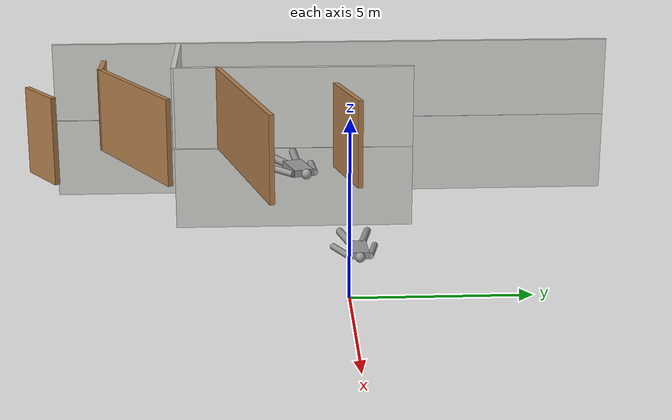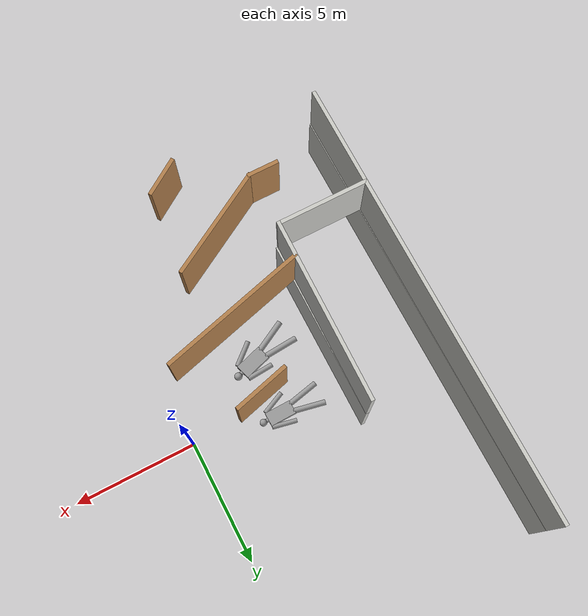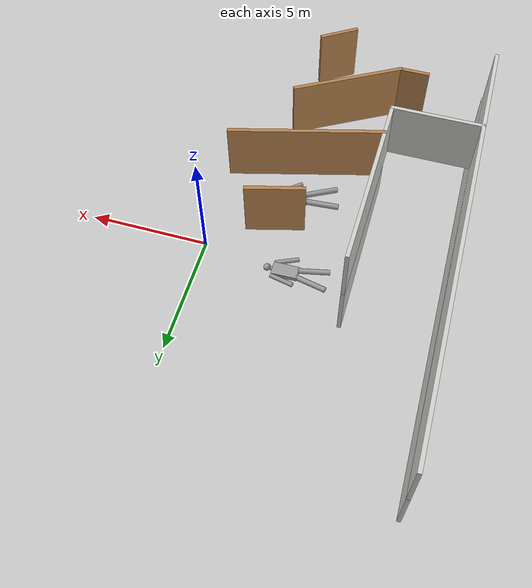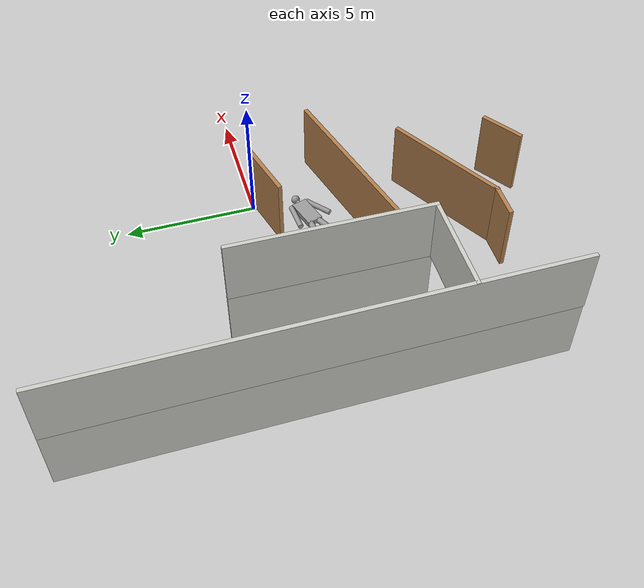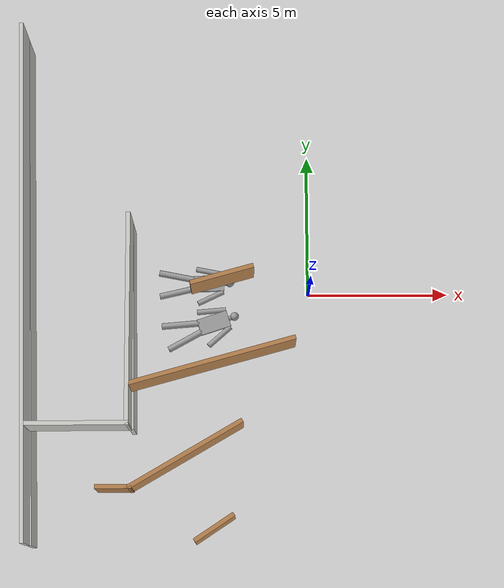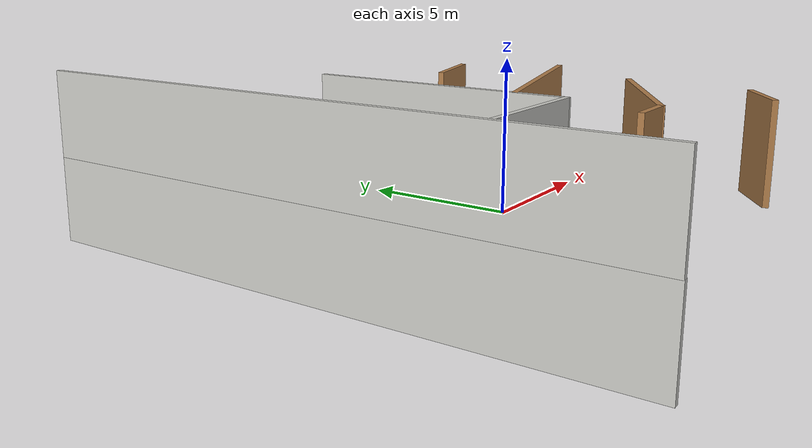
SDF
<sdf version="1.6">
 <model name="home_human">
  <link name="Wall_129">
   <pose>-8.07133 -4.92941 2.5 0 -0 3.14159</pose>
   <visual name="Wall_129_Visual">
    <pose>0 0 1.25 0 -0 0</pose>
    <geometry><box><size>3.66889 0.15 2.5</size></box></geometry>
    <material>
     <script><uri>file://media/materials/scripts/gazebo.material</uri><name>Gazebo/CeilingTiled</name></script>
     <ambient>1 1 1 1</ambient>
     <shader type="pixel"/>
    </material>
    <meta><layer>1</layer></meta>
   </visual>
   <collision name="Wall_129_Collision">
    <pose>0 0 1.25 0 -0 0</pose>
    <geometry><box><size>3.66889 0.15 2.5</size></box></geometry>
    <surface>
     <friction>
      <ode><mu>1</mu><mu2>1</mu2><fdir1>0 0 0</fdir1><slip1>0</slip1><slip2>0</slip2></ode>
      <torsional>
       <coefficient>1</coefficient>
       <patch_radius>0</patch_radius>
       <surface_radius>0</surface_radius>
       <use_patch_radius>1</use_patch_radius>
       <ode><slip>0</slip></ode>
      </torsional>
     </friction>
     <bounce><restitution_coefficient>0</restitution_coefficient><threshold>1e+06</threshold></bounce>
     <contact>
      <collide_without_contact>0</collide_without_contact>
      <collide_without_contact_bitmask>1</collide_without_contact_bitmask>
      <collide_bitmask>1</collide_bitmask>
      <ode>
       <soft_cfm>0</soft_cfm>
       <soft_erp>0.2</soft_erp>
       <kp>1e+13</kp>
       <kd>1</kd>
       <max_vel>0.01</max_vel>
       <min_depth>0</min_depth>
      </ode>
      <bullet>
       <split_impulse>1</split_impulse>
       <split_impulse_penetration_threshold>-0.01</split_impulse_penetration_threshold>
       <soft_cfm>0</soft_cfm>
       <soft_erp>0.2</soft_erp>
       <kp>1e+13</kp>
       <kd>1</kd>
      </bullet>
     </contact>
    </surface>
   </collision>
  </link>
  <link name="Wall_136">
   <pose>-3.43327 -2.83141 2.5 0 -0 0.26177</pose>
   <visual name="Wall_136_Visual">
    <pose>0 0 1.25 0 -0 0</pose>
    <geometry><box><size>6 0.15 2.5</size></box></geometry>
    <material>
     <script><uri>file://media/materials/scripts/gazebo.material</uri><name>Gazebo/Wood</name></script>
     <ambient>1 1 1 1</ambient>
     <shader type="pixel"/>
    </material>
    <meta><layer>1</layer></meta>
   </visual>
   <collision name="Wall_136_Collision">
    <pose>0 0 1.25 0 -0 0</pose>
    <geometry><box><size>6 0.15 2.5</size></box></geometry>
    <surface>
     <friction>
      <ode><mu>1</mu><mu2>1</mu2><fdir1>0 0 0</fdir1><slip1>0</slip1><slip2>0</slip2></ode>
      <torsional>
       <coefficient>1</coefficient>
       <patch_radius>0</patch_radius>
       <surface_radius>0</surface_radius>
       <use_patch_radius>1</use_patch_radius>
       <ode><slip>0</slip></ode>
      </torsional>
     </friction>
     <bounce><restitution_coefficient>0</restitution_coefficient><threshold>1e+06</threshold></bounce>
     <contact>
      <collide_without_contact>0</collide_without_contact>
      <collide_without_contact_bitmask>1</collide_without_contact_bitmask>
      <collide_bitmask>1</collide_bitmask>
      <ode>
       <soft_cfm>0</soft_cfm>
       <soft_erp>0.2</soft_erp>
       <kp>1e+13</kp>
       <kd>1</kd>
       <max_vel>0.01</max_vel>
       <min_depth>0</min_depth>
      </ode>
      <bullet>
       <split_impulse>1</split_impulse>
       <split_impulse_penetration_threshold>-0.01</split_impulse_penetration_threshold>
       <soft_cfm>0</soft_cfm>
       <soft_erp>0.2</soft_erp>
       <kp>1e+13</kp>
       <kd>1</kd>
      </bullet>
     </contact>
    </surface>
   </collision>
  </link>
  <link name="Wall_138">
   <pose>-3.04677 0.122093 2.5 0 0 -2.87998</pose>
   <visual name="Wall_138_Visual">
    <pose>0 0 1.25 0 -0 0</pose>
    <geometry><box><size>2.25 0.15 2.5</size></box></geometry>
    <material>
     <script><uri>file://media/materials/scripts/gazebo.material</uri><name>Gazebo/Wood</name></script>
     <ambient>1 1 1 1</ambient>
     <shader type="pixel"/>
    </material>
    <meta><layer>1</layer></meta>
   </visual>
   <collision name="Wall_138_Collision">
    <pose>0 0 1.25 0 -0 0</pose>
    <geometry><box><size>2.25 0.15 2.5</size></box></geometry>
    <surface>
     <friction>
      <ode><mu>1</mu><mu2>1</mu2><fdir1>0 0 0</fdir1><slip1>0</slip1><slip2>0</slip2></ode>
      <torsional>
       <coefficient>1</coefficient>
       <patch_radius>0</patch_radius>
       <surface_radius>0</surface_radius>
       <use_patch_radius>1</use_patch_radius>
       <ode><slip>0</slip></ode>
      </torsional>
     </friction>
     <bounce><restitution_coefficient>0</restitution_coefficient><threshold>1e+06</threshold></bounce>
     <contact>
      <collide_without_contact>0</collide_without_contact>
      <collide_without_contact_bitmask>1</collide_without_contact_bitmask>
      <collide_bitmask>1</collide_bitmask>
      <ode>
       <soft_cfm>0</soft_cfm>
       <soft_erp>0.2</soft_erp>
       <kp>1e+13</kp>
       <kd>1</kd>
       <max_vel>0.01</max_vel>
       <min_depth>0</min_depth>
      </ode>
      <bullet>
       <split_impulse>1</split_impulse>
       <split_impulse_penetration_threshold>-0.01</split_impulse_penetration_threshold>
       <soft_cfm>0</soft_cfm>
       <soft_erp>0.2</soft_erp>
       <kp>1e+13</kp>
       <kd>1</kd>
      </bullet>
     </contact>
    </surface>
   </collision>
  </link>
  <link name="Wall_150">
   <pose>-3.34634 -8.48341 2.5 0 -0 0.584627</pose>
   <visual name="Wall_150_Visual">
    <pose>0 0 1.25 0 -0 0</pose>
    <geometry><box><size>1.60682 0.15 2.5</size></box></geometry>
    <material>
     <script><uri>file://media/materials/scripts/gazebo.material</uri><name>Gazebo/Wood</name></script>
     <ambient>1 1 1 1</ambient>
     <shader type="pixel"/>
    </material>
    <meta><layer>1</layer></meta>
   </visual>
   <collision name="Wall_150_Collision">
    <pose>0 0 1.25 0 -0 0</pose>
    <geometry><box><size>1.60682 0.15 2.5</size></box></geometry>
    <surface>
     <friction>
      <ode><mu>1</mu><mu2>1</mu2><fdir1>0 0 0</fdir1><slip1>0</slip1><slip2>0</slip2></ode>
      <torsional>
       <coefficient>1</coefficient>
       <patch_radius>0</patch_radius>
       <surface_radius>0</surface_radius>
       <use_patch_radius>1</use_patch_radius>
       <ode><slip>0</slip></ode>
      </torsional>
     </friction>
     <bounce><restitution_coefficient>0</restitution_coefficient><threshold>1e+06</threshold></bounce>
     <contact>
      <collide_without_contact>0</collide_without_contact>
      <collide_without_contact_bitmask>1</collide_without_contact_bitmask>
      <collide_bitmask>1</collide_bitmask>
      <ode>
       <soft_cfm>0</soft_cfm>
       <soft_erp>0.2</soft_erp>
       <kp>1e+13</kp>
       <kd>1</kd>
       <max_vel>0.01</max_vel>
       <min_depth>0</min_depth>
      </ode>
      <bullet>
       <split_impulse>1</split_impulse>
       <split_impulse_penetration_threshold>-0.01</split_impulse_penetration_threshold>
       <soft_cfm>0</soft_cfm>
       <soft_erp>0.2</soft_erp>
       <kp>1e+13</kp>
       <kd>1</kd>
      </bullet>
     </contact>
    </surface>
   </collision>
  </link>
  <link name="Wall_153">
   <pose>-4.32138 -5.99691 2.5 0 0 -2.61799</pose>
   <visual name="Wall_153_Visual">
    <pose>0 0 1.25 0 -0 0</pose>
    <geometry><box><size>4.5 0.15 2.5</size></box></geometry>
    <material>
     <script><uri>file://media/materials/scripts/gazebo.material</uri><name>Gazebo/Wood</name></script>
     <ambient>1 1 1 1</ambient>
     <shader type="pixel"/>
    </material>
    <meta><layer>1</layer></meta>
   </visual>
   <collision name="Wall_153_Collision">
    <pose>0 0 1.25 0 -0 0</pose>
    <geometry><box><size>4.5 0.15 2.5</size></box></geometry>
    <surface>
     <friction>
      <ode><mu>1</mu><mu2>1</mu2><fdir1>0 0 0</fdir1><slip1>0</slip1><slip2>0</slip2></ode>
      <torsional>
       <coefficient>1</coefficient>
       <patch_radius>0</patch_radius>
       <surface_radius>0</surface_radius>
       <use_patch_radius>1</use_patch_radius>
       <ode><slip>0</slip></ode>
      </torsional>
     </friction>
     <bounce><restitution_coefficient>0</restitution_coefficient><threshold>1e+06</threshold></bounce>
     <contact>
      <collide_without_contact>0</collide_without_contact>
      <collide_without_contact_bitmask>1</collide_without_contact_bitmask>
      <collide_bitmask>1</collide_bitmask>
      <ode>
       <soft_cfm>0</soft_cfm>
       <soft_erp>0.2</soft_erp>
       <kp>1e+13</kp>
       <kd>1</kd>
       <max_vel>0.01</max_vel>
       <min_depth>0</min_depth>
      </ode>
      <bullet>
       <split_impulse>1</split_impulse>
       <split_impulse_penetration_threshold>-0.01</split_impulse_penetration_threshold>
       <soft_cfm>0</soft_cfm>
       <soft_erp>0.2</soft_erp>
       <kp>1e+13</kp>
       <kd>1</kd>
      </bullet>
     </contact>
    </surface>
   </collision>
  </link>
  <link name="Wall_155">
   <pose>-6.75498 -7.08441 2.5 0 -0 0</pose>
   <visual name="Wall_155_Visual">
    <pose>0 0 1.25 0 -0 0</pose>
    <geometry><box><size>1.25 0.15 2.5</size></box></geometry>
    <material>
     <script><uri>file://media/materials/scripts/gazebo.material</uri><name>Gazebo/Wood</name></script>
     <ambient>1 1 1 1</ambient>
     <shader type="pixel"/>
    </material>
    <meta><layer>1</layer></meta>
   </visual>
   <collision name="Wall_155_Collision">
    <pose>0 0 1.25 0 -0 0</pose>
    <geometry><box><size>1.25 0.15 2.5</size></box></geometry>
    <surface>
     <friction>
      <ode><mu>1</mu><mu2>1</mu2><fdir1>0 0 0</fdir1><slip1>0</slip1><slip2>0</slip2></ode>
      <torsional>
       <coefficient>1</coefficient>
       <patch_radius>0</patch_radius>
       <surface_radius>0</surface_radius>
       <use_patch_radius>1</use_patch_radius>
       <ode><slip>0</slip></ode>
      </torsional>
     </friction>
     <bounce><restitution_coefficient>0</restitution_coefficient><threshold>1e+06</threshold></bounce>
     <contact>
      <collide_without_contact>0</collide_without_contact>
      <collide_without_contact_bitmask>1</collide_without_contact_bitmask>
      <collide_bitmask>1</collide_bitmask>
      <ode>
       <soft_cfm>0</soft_cfm>
       <soft_erp>0.2</soft_erp>
       <kp>1e+13</kp>
       <kd>1</kd>
       <max_vel>0.01</max_vel>
       <min_depth>0</min_depth>
      </ode>
      <bullet>
       <split_impulse>1</split_impulse>
       <split_impulse_penetration_threshold>-0.01</split_impulse_penetration_threshold>
       <soft_cfm>0</soft_cfm>
       <soft_erp>0.2</soft_erp>
       <kp>1e+13</kp>
       <kd>1</kd>
      </bullet>
     </contact>
    </surface>
   </collision>
  </link>
  <link name="Wall_20">
   <pose>-9.85327 -0.021907 0 0 0 -1.56307</pose>
   <visual name="Wall_20_Visual">
    <pose>0 0 1.25 0 -0 0</pose>
    <geometry><box><size>17.8918 0.15 2.5</size></box></geometry>
    <material>
     <script><uri>file://media/materials/scripts/gazebo.material</uri><name>Gazebo/CeilingTiled</name></script>
     <ambient>1 1 1 1</ambient>
     <shader type="pixel"/>
    </material>
    <meta><layer>0</layer></meta>
   </visual>
   <collision name="Wall_20_Collision">
    <pose>0 0 1.25 0 -0 0</pose>
    <geometry><box><size>17.8918 0.15 2.5</size></box></geometry>
    <surface>
     <friction>
      <ode><mu>1</mu><mu2>1</mu2><fdir1>0 0 0</fdir1><slip1>0</slip1><slip2>0</slip2></ode>
      <torsional>
       <coefficient>1</coefficient>
       <patch_radius>0</patch_radius>
       <surface_radius>0</surface_radius>
       <use_patch_radius>1</use_patch_radius>
       <ode><slip>0</slip></ode>
      </torsional>
     </friction>
     <bounce><restitution_coefficient>0</restitution_coefficient><threshold>1e+06</threshold></bounce>
     <contact>
      <collide_without_contact>0</collide_without_contact>
      <collide_without_contact_bitmask>1</collide_without_contact_bitmask>
      <collide_bitmask>1</collide_bitmask>
      <ode>
       <soft_cfm>0</soft_cfm>
       <soft_erp>0.2</soft_erp>
       <kp>1e+13</kp>
       <kd>1</kd>
       <max_vel>0.01</max_vel>
       <min_depth>0</min_depth>
      </ode>
      <bullet>
       <split_impulse>1</split_impulse>
       <split_impulse_penetration_threshold>-0.01</split_impulse_penetration_threshold>
       <soft_cfm>0</soft_cfm>
       <soft_erp>0.2</soft_erp>
       <kp>1e+13</kp>
       <kd>1</kd>
      </bullet>
     </contact>
    </surface>
   </collision>
  </link>
  <link name="Wall_31">
   <pose>-6.23077 -1.33341 0 0 0 -1.5708</pose>
   <visual name="Wall_31_Visual">
    <pose>0 0 1.25 0 -0 0</pose>
    <geometry><box><size>7.25 0.15 2.5</size></box></geometry>
    <material>
     <script><uri>file://media/materials/scripts/gazebo.material</uri><name>Gazebo/CeilingTiled</name></script>
     <ambient>1 1 1 1</ambient>
     <shader type="pixel"/>
    </material>
    <meta><layer>0</layer></meta>
   </visual>
   <collision name="Wall_31_Collision">
    <pose>0 0 1.25 0 -0 0</pose>
    <geometry><box><size>7.25 0.15 2.5</size></box></geometry>
    <surface>
     <friction>
      <ode><mu>1</mu><mu2>1</mu2><fdir1>0 0 0</fdir1><slip1>0</slip1><slip2>0</slip2></ode>
      <torsional>
       <coefficient>1</coefficient>
       <patch_radius>0</patch_radius>
       <surface_radius>0</surface_radius>
       <use_patch_radius>1</use_patch_radius>
       <ode><slip>0</slip></ode>
      </torsional>
     </friction>
     <bounce><restitution_coefficient>0</restitution_coefficient><threshold>1e+06</threshold></bounce>
     <contact>
      <collide_without_contact>0</collide_without_contact>
      <collide_without_contact_bitmask>1</collide_without_contact_bitmask>
      <collide_bitmask>1</collide_bitmask>
      <ode>
       <soft_cfm>0</soft_cfm>
       <soft_erp>0.2</soft_erp>
       <kp>1e+13</kp>
       <kd>1</kd>
       <max_vel>0.01</max_vel>
       <min_depth>0</min_depth>
      </ode>
      <bullet>
       <split_impulse>1</split_impulse>
       <split_impulse_penetration_threshold>-0.01</split_impulse_penetration_threshold>
       <soft_cfm>0</soft_cfm>
       <soft_erp>0.2</soft_erp>
       <kp>1e+13</kp>
       <kd>1</kd>
      </bullet>
     </contact>
    </surface>
   </collision>
  </link>
  <link name="Wall_62">
   <pose>-9.87377 -0.021907 2.5 0 0 -1.56539</pose>
   <visual name="Wall_62_Visual">
    <pose>0 0 1.25 0 -0 0</pose>
    <geometry><box><size>17.8918 0.15 2.5</size></box></geometry>
    <material>
     <script><uri>file://media/materials/scripts/gazebo.material</uri><name>Gazebo/CeilingTiled</name></script>
     <ambient>1 1 1 1</ambient>
     <shader type="pixel"/>
    </material>
    <meta><layer>1</layer></meta>
   </visual>
   <collision name="Wall_62_Collision">
    <pose>0 0 1.25 0 -0 0</pose>
    <geometry><box><size>17.8918 0.15 2.5</size></box></geometry>
    <surface>
     <friction>
      <ode><mu>1</mu><mu2>1</mu2><fdir1>0 0 0</fdir1><slip1>0</slip1><slip2>0</slip2></ode>
      <torsional>
       <coefficient>1</coefficient>
       <patch_radius>0</patch_radius>
       <surface_radius>0</surface_radius>
       <use_patch_radius>1</use_patch_radius>
       <ode><slip>0</slip></ode>
      </torsional>
     </friction>
     <bounce><restitution_coefficient>0</restitution_coefficient><threshold>1e+06</threshold></bounce>
     <contact>
      <collide_without_contact>0</collide_without_contact>
      <collide_without_contact_bitmask>1</collide_without_contact_bitmask>
      <collide_bitmask>1</collide_bitmask>
      <ode>
       <soft_cfm>0</soft_cfm>
       <soft_erp>0.2</soft_erp>
       <kp>1e+13</kp>
       <kd>1</kd>
       <max_vel>0.01</max_vel>
       <min_depth>0</min_depth>
      </ode>
      <bullet>
       <split_impulse>1</split_impulse>
       <split_impulse_penetration_threshold>-0.01</split_impulse_penetration_threshold>
       <soft_cfm>0</soft_cfm>
       <soft_erp>0.2</soft_erp>
       <kp>1e+13</kp>
       <kd>1</kd>
      </bullet>
     </contact>
    </surface>
   </collision>
  </link>
  <link name="Wall_68">
   <pose>-6.27133 -1.35641 2.5 0 0 -1.58215</pose>
   <visual name="Wall_68_Visual">
    <pose>0 0 1.25 0 -0 0</pose>
    <geometry><box><size>7.29646 0.15 2.5</size></box></geometry>
    <material>
     <script><uri>file://media/materials/scripts/gazebo.material</uri><name>Gazebo/CeilingTiled</name></script>
     <ambient>1 1 1 1</ambient>
     <shader type="pixel"/>
    </material>
    <meta><layer>1</layer></meta>
   </visual>
   <collision name="Wall_68_Collision">
    <pose>0 0 1.25 0 -0 0</pose>
    <geometry><box><size>7.29646 0.15 2.5</size></box></geometry>
    <surface>
     <friction>
      <ode><mu>1</mu><mu2>1</mu2><fdir1>0 0 0</fdir1><slip1>0</slip1><slip2>0</slip2></ode>
      <torsional>
       <coefficient>1</coefficient>
       <patch_radius>0</patch_radius>
       <surface_radius>0</surface_radius>
       <use_patch_radius>1</use_patch_radius>
       <ode><slip>0</slip></ode>
      </torsional>
     </friction>
     <bounce><restitution_coefficient>0</restitution_coefficient><threshold>1e+06</threshold></bounce>
     <contact>
      <collide_without_contact>0</collide_without_contact>
      <collide_without_contact_bitmask>1</collide_without_contact_bitmask>
      <collide_bitmask>1</collide_bitmask>
      <ode>
       <soft_cfm>0</soft_cfm>
       <soft_erp>0.2</soft_erp>
       <kp>1e+13</kp>
       <kd>1</kd>
       <max_vel>0.01</max_vel>
       <min_depth>0</min_depth>
      </ode>
      <bullet>
       <split_impulse>1</split_impulse>
       <split_impulse_penetration_threshold>-0.01</split_impulse_penetration_threshold>
       <soft_cfm>0</soft_cfm>
       <soft_erp>0.2</soft_erp>
       <kp>1e+13</kp>
       <kd>1</kd>
      </bullet>
     </contact>
    </surface>
   </collision>
  </link>
  <model name="human_0">
   <link name="link_2">
    <inertial>
     <mass>0.00274256</mass>
     <inertia>
      <ixx>6.98489e-06</ixx>
      <ixy>0</ixy>
      <ixz>0</ixz>
      <iyy>6.98489e-06</iyy>
      <iyz>0</iyz>
      <izz>9.48338e-06</izz>
     </inertia>
    </inertial>
    <pose>0.004143 -0.698236 0.01353 1.53639 -0.014642 -0.02388</pose>
    <visual name="visual">
     <geometry><cylinder><radius>0.0831608</radius><length>0.0990711</length></cylinder></geometry>
     <material>
      <lighting>1</lighting>
      <script><uri>file://media/materials/scripts/gazebo.material</uri><name>Gazebo/Grey</name></script>
      <shader type="pixel"/>
     </material>
    </visual>
    <collision name="collision">
     <geometry><cylinder><radius>0.083161</radius><length>0.099071</length></cylinder></geometry>
     <surface>
      <friction>
       <ode><mu>1</mu><mu2>1</mu2><fdir1>0 0 0</fdir1><slip1>0</slip1><slip2>0</slip2></ode>
       <torsional>
        <coefficient>1</coefficient>
        <patch_radius>0</patch_radius>
        <surface_radius>0</surface_radius>
        <use_patch_radius>1</use_patch_radius>
        <ode><slip>0</slip></ode>
       </torsional>
      </friction>
      <bounce><restitution_coefficient>0</restitution_coefficient><threshold>1e+06</threshold></bounce>
      <contact>
       <collide_without_contact>0</collide_without_contact>
       <collide_without_contact_bitmask>1</collide_without_contact_bitmask>
       <collide_bitmask>1</collide_bitmask>
       <ode>
        <soft_cfm>0</soft_cfm>
        <soft_erp>0.2</soft_erp>
        <kp>1e+13</kp>
        <kd>1</kd>
        <max_vel>0.01</max_vel>
        <min_depth>0</min_depth>
       </ode>
       <bullet>
        <split_impulse>1</split_impulse>
        <split_impulse_penetration_threshold>-0.01</split_impulse_penetration_threshold>
        <soft_cfm>0</soft_cfm>
        <soft_erp>0.2</soft_erp>
        <kp>1e+13</kp>
        <kd>1</kd>
       </bullet>
      </contact>
     </surface>
    </collision>
   </link>
   <link name="link_3">
    <inertial>
     <mass>0.0260719</mass>
     <inertia>
      <ixx>0.000229246</ixx>
      <ixy>0</ixy>
      <ixz>0</ixz>
      <iyy>0.000229246</iyy>
      <iyz>0</iyz>
      <izz>0.000229246</izz>
     </inertia>
    </inertial>
    <pose>0.008435 -0.870567 0.038148 0 -0 0</pose>
    <visual name="visual">
     <geometry><sphere><radius>0.148263</radius></sphere></geometry>
     <material>
      <lighting>1</lighting>
      <script><uri>file://media/materials/scripts/gazebo.material</uri><name>Gazebo/Grey</name></script>
      <shader type="pixel"/>
     </material>
    </visual>
    <collision name="collision">
     <geometry><sphere><radius>0.148263</radius></sphere></geometry>
     <surface>
      <friction>
       <ode><mu>1</mu><mu2>1</mu2><fdir1>0 0 0</fdir1><slip1>0</slip1><slip2>0</slip2></ode>
       <torsional>
        <coefficient>1</coefficient>
        <patch_radius>0</patch_radius>
        <surface_radius>0</surface_radius>
        <use_patch_radius>1</use_patch_radius>
        <ode><slip>0</slip></ode>
       </torsional>
      </friction>
      <bounce><restitution_coefficient>0</restitution_coefficient><threshold>1e+06</threshold></bounce>
      <contact>
       <collide_without_contact>0</collide_without_contact>
       <collide_without_contact_bitmask>1</collide_without_contact_bitmask>
       <collide_bitmask>1</collide_bitmask>
       <ode>
        <soft_cfm>0</soft_cfm>
        <soft_erp>0.2</soft_erp>
        <kp>1e+13</kp>
        <kd>1</kd>
        <max_vel>0.01</max_vel>
        <min_depth>0</min_depth>
       </ode>
       <bullet>
        <split_impulse>1</split_impulse>
        <split_impulse_penetration_threshold>-0.01</split_impulse_penetration_threshold>
        <soft_cfm>0</soft_cfm>
        <soft_erp>0.2</soft_erp>
        <kp>1e+13</kp>
        <kd>1</kd>
       </bullet>
      </contact>
     </surface>
    </collision>
   </link>
   <link name="link_4">
    <inertial>
     <mass>0.0350676</mass>
     <inertia>
      <ixx>0.00299916</ixx>
      <ixy>0</ixy>
      <ixz>0</ixz>
      <iyy>0.00299916</iyy>
      <iyz>0</iyz>
      <izz>0.00015373</izz>
     </inertia>
    </inertial>
    <pose>0.43753 -0.16616 -0.011266 1.55407 0.003979 -0.226833</pose>
    <visual name="visual">
     <geometry><cylinder><radius>0.0936358</radius><length>1</length></cylinder></geometry>
     <material>
      <lighting>1</lighting>
      <script><uri>file://media/materials/scripts/gazebo.material</uri><name>Gazebo/Grey</name></script>
      <shader type="pixel"/>
     </material>
    </visual>
    <collision name="collision">
     <geometry><cylinder><radius>0.093636</radius><length>1</length></cylinder></geometry>
     <surface>
      <friction>
       <ode><mu>1</mu><mu2>1</mu2><fdir1>0 0 0</fdir1><slip1>0</slip1><slip2>0</slip2></ode>
       <torsional>
        <coefficient>1</coefficient>
        <patch_radius>0</patch_radius>
        <surface_radius>0</surface_radius>
        <use_patch_radius>1</use_patch_radius>
        <ode><slip>0</slip></ode>
       </torsional>
      </friction>
      <bounce><restitution_coefficient>0</restitution_coefficient><threshold>1e+06</threshold></bounce>
      <contact>
       <collide_without_contact>0</collide_without_contact>
       <collide_without_contact_bitmask>1</collide_without_contact_bitmask>
       <collide_bitmask>1</collide_bitmask>
       <ode>
        <soft_cfm>0</soft_cfm>
        <soft_erp>0.2</soft_erp>
        <kp>1e+13</kp>
        <kd>1</kd>
        <max_vel>0.01</max_vel>
        <min_depth>0</min_depth>
       </ode>
       <bullet>
        <split_impulse>1</split_impulse>
        <split_impulse_penetration_threshold>-0.01</split_impulse_penetration_threshold>
        <soft_cfm>0</soft_cfm>
        <soft_erp>0.2</soft_erp>
        <kp>1e+13</kp>
        <kd>1</kd>
       </bullet>
      </contact>
     </surface>
    </collision>
   </link>
   <link name="link_4_clone">
    <inertial>
     <mass>0.0350676</mass>
     <inertia>
      <ixx>0.00299916</ixx>
      <ixy>0</ixy>
      <ixz>0</ixz>
      <iyy>0.00299916</iyy>
      <iyz>0</iyz>
      <izz>0.00015373</izz>
     </inertia>
    </inertial>
    <pose>-0.497497 -0.16131 -0.011266 1.55968 0.013118 0.407511</pose>
    <visual name="visual">
     <geometry><cylinder><radius>0.0936358</radius><length>1</length></cylinder></geometry>
     <material>
      <lighting>1</lighting>
      <script><uri>file://media/materials/scripts/gazebo.material</uri><name>Gazebo/Grey</name></script>
      <shader type="pixel"/>
     </material>
    </visual>
    <collision name="collision">
     <geometry><cylinder><radius>0.093636</radius><length>1</length></cylinder></geometry>
     <surface>
      <friction>
       <ode><mu>1</mu><mu2>1</mu2><fdir1>0 0 0</fdir1><slip1>0</slip1><slip2>0</slip2></ode>
       <torsional>
        <coefficient>1</coefficient>
        <patch_radius>0</patch_radius>
        <surface_radius>0</surface_radius>
        <use_patch_radius>1</use_patch_radius>
        <ode><slip>0</slip></ode>
       </torsional>
      </friction>
      <bounce><restitution_coefficient>0</restitution_coefficient><threshold>1e+06</threshold></bounce>
      <contact>
       <collide_without_contact>0</collide_without_contact>
       <collide_without_contact_bitmask>1</collide_without_contact_bitmask>
       <collide_bitmask>1</collide_bitmask>
       <ode>
        <soft_cfm>0</soft_cfm>
        <soft_erp>0.2</soft_erp>
        <kp>1e+13</kp>
        <kd>1</kd>
        <max_vel>0.01</max_vel>
        <min_depth>0</min_depth>
       </ode>
       <bullet>
        <split_impulse>1</split_impulse>
        <split_impulse_penetration_threshold>-0.01</split_impulse_penetration_threshold>
        <soft_cfm>0</soft_cfm>
        <soft_erp>0.2</soft_erp>
        <kp>1e+13</kp>
        <kd>1</kd>
       </bullet>
      </contact>
     </surface>
    </collision>
   </link>
   <link name="link_4_clone_0">
    <inertial>
     <mass>0.0637493</mass>
     <inertia>
      <ixx>0.00926023</ixx>
      <ixy>0</ixy>
      <ixz>0</ixz>
      <iyy>0.00926023</iyy>
      <iyz>0</iyz>
      <izz>0.000389063</izz>
     </inertia>
    </inertial>
    <pose>0.310843 1.01076 -0.011266 1.55948 0.003979 -0.226833</pose>
    <visual name="visual">
     <geometry><cylinder><radius>0.110481</radius><length>1.30633</length></cylinder></geometry>
     <material>
      <lighting>1</lighting>
      <script><uri>file://media/materials/scripts/gazebo.material</uri><name>Gazebo/Grey</name></script>
      <shader type="pixel"/>
     </material>
    </visual>
    <collision name="collision">
     <geometry><cylinder><radius>0.110481</radius><length>1.30633</length></cylinder></geometry>
     <surface>
      <friction>
       <ode><mu>1</mu><mu2>1</mu2><fdir1>0 0 0</fdir1><slip1>0</slip1><slip2>0</slip2></ode>
       <torsional>
        <coefficient>1</coefficient>
        <patch_radius>0</patch_radius>
        <surface_radius>0</surface_radius>
        <use_patch_radius>1</use_patch_radius>
        <ode><slip>0</slip></ode>
       </torsional>
      </friction>
      <bounce><restitution_coefficient>0</restitution_coefficient><threshold>1e+06</threshold></bounce>
      <contact>
       <collide_without_contact>0</collide_without_contact>
       <collide_without_contact_bitmask>1</collide_without_contact_bitmask>
       <collide_bitmask>1</collide_bitmask>
       <ode>
        <soft_cfm>0</soft_cfm>
        <soft_erp>0.2</soft_erp>
        <kp>1e+13</kp>
        <kd>1</kd>
        <max_vel>0.01</max_vel>
        <min_depth>0</min_depth>
       </ode>
       <bullet>
        <split_impulse>1</split_impulse>
        <split_impulse_penetration_threshold>-0.01</split_impulse_penetration_threshold>
        <soft_cfm>0</soft_cfm>
        <soft_erp>0.2</soft_erp>
        <kp>1e+13</kp>
        <kd>1</kd>
       </bullet>
      </contact>
     </surface>
    </collision>
   </link>
   <link name="link_4_clone_0_clone">
    <inertial>
     <mass>0.0637493</mass>
     <inertia>
      <ixx>0.00926023</ixx>
      <ixy>0</ixy>
      <ixz>0</ixz>
      <iyy>0.00926023</iyy>
      <iyz>0</iyz>
      <izz>0.000389063</izz>
     </inertia>
    </inertial>
    <pose>-0.268402 1.01817 -0.011266 1.56033 0.010391 0.188569</pose>
    <visual name="visual">
     <geometry><cylinder><radius>0.110481</radius><length>1.30633</length></cylinder></geometry>
     <material>
      <lighting>1</lighting>
      <script><uri>file://media/materials/scripts/gazebo.material</uri><name>Gazebo/Grey</name></script>
      <shader type="pixel"/>
     </material>
    </visual>
    <collision name="collision">
     <geometry><cylinder><radius>0.110481</radius><length>1.30633</length></cylinder></geometry>
     <surface>
      <friction>
       <ode><mu>1</mu><mu2>1</mu2><fdir1>0 0 0</fdir1><slip1>0</slip1><slip2>0</slip2></ode>
       <torsional>
        <coefficient>1</coefficient>
        <patch_radius>0</patch_radius>
        <surface_radius>0</surface_radius>
        <use_patch_radius>1</use_patch_radius>
        <ode><slip>0</slip></ode>
       </torsional>
      </friction>
      <bounce><restitution_coefficient>0</restitution_coefficient><threshold>1e+06</threshold></bounce>
      <contact>
       <collide_without_contact>0</collide_without_contact>
       <collide_without_contact_bitmask>1</collide_without_contact_bitmask>
       <collide_bitmask>1</collide_bitmask>
       <ode>
        <soft_cfm>0</soft_cfm>
        <soft_erp>0.2</soft_erp>
        <kp>1e+13</kp>
        <kd>1</kd>
        <max_vel>0.01</max_vel>
        <min_depth>0</min_depth>
       </ode>
       <bullet>
        <split_impulse>1</split_impulse>
        <split_impulse_penetration_threshold>-0.01</split_impulse_penetration_threshold>
        <soft_cfm>0</soft_cfm>
        <soft_erp>0.2</soft_erp>
        <kp>1e+13</kp>
        <kd>1</kd>
       </bullet>
      </contact>
     </surface>
    </collision>
   </link>
   <link name="link_6">
    <inertial>
     <mass>0.119494</mass>
     <inertia>
      <ixx>0.0119192</ixx>
      <ixy>0</ixy>
      <ixz>0</ixz>
      <iyy>0.00354679</iyy>
      <iyz>0</iyz>
      <izz>0.0146928</izz>
     </inertia>
    </inertial>
    <pose>0.010942 -0.116021 0.002669 0 -0 0</pose>
    <visual name="visual">
     <geometry><box><size>0.563349 1.07617 0.197027</size></box></geometry>
     <material>
      <lighting>1</lighting>
      <script><uri>file://media/materials/scripts/gazebo.material</uri><name>Gazebo/Grey</name></script>
      <shader type="pixel"><normal_map>__default__</normal_map></shader>
     </material>
    </visual>
    <collision name="collision">
     <geometry><box><size>0.563349 1.07617 0.197027</size></box></geometry>
     <surface>
      <friction>
       <ode><mu>1</mu><mu2>1</mu2><fdir1>0 0 0</fdir1><slip1>0</slip1><slip2>0</slip2></ode>
       <torsional>
        <coefficient>1</coefficient>
        <patch_radius>0</patch_radius>
        <surface_radius>0</surface_radius>
        <use_patch_radius>1</use_patch_radius>
        <ode><slip>0</slip></ode>
       </torsional>
      </friction>
      <bounce><restitution_coefficient>0</restitution_coefficient><threshold>1e+06</threshold></bounce>
      <contact>
       <collide_without_contact>0</collide_without_contact>
       <collide_without_contact_bitmask>1</collide_without_contact_bitmask>
       <collide_bitmask>1</collide_bitmask>
       <ode>
        <soft_cfm>0</soft_cfm>
        <soft_erp>0.2</soft_erp>
        <kp>1e+13</kp>
        <kd>1</kd>
        <max_vel>0.01</max_vel>
        <min_depth>0</min_depth>
       </ode>
       <bullet>
        <split_impulse>1</split_impulse>
        <split_impulse_penetration_threshold>-0.01</split_impulse_penetration_threshold>
        <soft_cfm>0</soft_cfm>
        <soft_erp>0.2</soft_erp>
        <kp>1e+13</kp>
        <kd>1</kd>
       </bullet>
      </contact>
     </surface>
    </collision>
   </link>
   <static>0</static>
   <pose>-3.66522 0.444397 0.109946 0 -0 1.59893</pose>
  </model>
  <model name="human_1">
   <link name="link_2">
    <inertial>
     <mass>0.00274256</mass>
     <inertia>
      <ixx>6.98489e-06</ixx>
      <ixy>0</ixy>
      <ixz>0</ixz>
      <iyy>6.98489e-06</iyy>
      <iyz>0</iyz>
      <izz>9.48338e-06</izz>
     </inertia>
    </inertial>
    <pose>0.004143 -0.698236 0.01353 1.53639 -0.014642 -0.02388</pose>
    <visual name="visual">
     <geometry><cylinder><radius>0.0831608</radius><length>0.0990711</length></cylinder></geometry>
     <material>
      <lighting>1</lighting>
      <script><uri>file://media/materials/scripts/gazebo.material</uri><name>Gazebo/Grey</name></script>
      <shader type="pixel"/>
     </material>
    </visual>
    <collision name="collision">
     <geometry><cylinder><radius>0.083161</radius><length>0.099071</length></cylinder></geometry>
     <surface>
      <friction>
       <ode><mu>1</mu><mu2>1</mu2><fdir1>0 0 0</fdir1><slip1>0</slip1><slip2>0</slip2></ode>
       <torsional>
        <coefficient>1</coefficient>
        <patch_radius>0</patch_radius>
        <surface_radius>0</surface_radius>
        <use_patch_radius>1</use_patch_radius>
        <ode><slip>0</slip></ode>
       </torsional>
      </friction>
      <bounce><restitution_coefficient>0</restitution_coefficient><threshold>1e+06</threshold></bounce>
      <contact>
       <collide_without_contact>0</collide_without_contact>
       <collide_without_contact_bitmask>1</collide_without_contact_bitmask>
       <collide_bitmask>1</collide_bitmask>
       <ode>
        <soft_cfm>0</soft_cfm>
        <soft_erp>0.2</soft_erp>
        <kp>1e+13</kp>
        <kd>1</kd>
        <max_vel>0.01</max_vel>
        <min_depth>0</min_depth>
       </ode>
       <bullet>
        <split_impulse>1</split_impulse>
        <split_impulse_penetration_threshold>-0.01</split_impulse_penetration_threshold>
        <soft_cfm>0</soft_cfm>
        <soft_erp>0.2</soft_erp>
        <kp>1e+13</kp>
        <kd>1</kd>
       </bullet>
      </contact>
     </surface>
    </collision>
   </link>
   <link name="link_3">
    <inertial>
     <mass>0.0260719</mass>
     <inertia>
      <ixx>0.000229246</ixx>
      <ixy>0</ixy>
      <ixz>0</ixz>
      <iyy>0.000229246</iyy>
      <iyz>0</iyz>
      <izz>0.000229246</izz>
     </inertia>
    </inertial>
    <pose>0.008435 -0.870567 0.038148 0 -0 0</pose>
    <visual name="visual">
     <geometry><sphere><radius>0.148263</radius></sphere></geometry>
     <material>
      <lighting>1</lighting>
      <script><uri>file://media/materials/scripts/gazebo.material</uri><name>Gazebo/Grey</name></script>
      <shader type="pixel"/>
     </material>
    </visual>
    <collision name="collision">
     <geometry><sphere><radius>0.148263</radius></sphere></geometry>
     <surface>
      <friction>
       <ode><mu>1</mu><mu2>1</mu2><fdir1>0 0 0</fdir1><slip1>0</slip1><slip2>0</slip2></ode>
       <torsional>
        <coefficient>1</coefficient>
        <patch_radius>0</patch_radius>
        <surface_radius>0</surface_radius>
        <use_patch_radius>1</use_patch_radius>
        <ode><slip>0</slip></ode>
       </torsional>
      </friction>
      <bounce><restitution_coefficient>0</restitution_coefficient><threshold>1e+06</threshold></bounce>
      <contact>
       <collide_without_contact>0</collide_without_contact>
       <collide_without_contact_bitmask>1</collide_without_contact_bitmask>
       <collide_bitmask>1</collide_bitmask>
       <ode>
        <soft_cfm>0</soft_cfm>
        <soft_erp>0.2</soft_erp>
        <kp>1e+13</kp>
        <kd>1</kd>
        <max_vel>0.01</max_vel>
        <min_depth>0</min_depth>
       </ode>
       <bullet>
        <split_impulse>1</split_impulse>
        <split_impulse_penetration_threshold>-0.01</split_impulse_penetration_threshold>
        <soft_cfm>0</soft_cfm>
        <soft_erp>0.2</soft_erp>
        <kp>1e+13</kp>
        <kd>1</kd>
       </bullet>
      </contact>
     </surface>
    </collision>
   </link>
   <link name="link_4">
    <inertial>
     <mass>0.0350676</mass>
     <inertia>
      <ixx>0.00299916</ixx>
      <ixy>0</ixy>
      <ixz>0</ixz>
      <iyy>0.00299916</iyy>
      <iyz>0</iyz>
      <izz>0.00015373</izz>
     </inertia>
    </inertial>
    <pose>0.43753 -0.16616 -0.011266 1.55407 0.003979 -0.226833</pose>
    <visual name="visual">
     <geometry><cylinder><radius>0.0936358</radius><length>1</length></cylinder></geometry>
     <material>
      <lighting>1</lighting>
      <script><uri>file://media/materials/scripts/gazebo.material</uri><name>Gazebo/Grey</name></script>
      <shader type="pixel"/>
     </material>
    </visual>
    <collision name="collision">
     <geometry><cylinder><radius>0.093636</radius><length>1</length></cylinder></geometry>
     <surface>
      <friction>
       <ode><mu>1</mu><mu2>1</mu2><fdir1>0 0 0</fdir1><slip1>0</slip1><slip2>0</slip2></ode>
       <torsional>
        <coefficient>1</coefficient>
        <patch_radius>0</patch_radius>
        <surface_radius>0</surface_radius>
        <use_patch_radius>1</use_patch_radius>
        <ode><slip>0</slip></ode>
       </torsional>
      </friction>
      <bounce><restitution_coefficient>0</restitution_coefficient><threshold>1e+06</threshold></bounce>
      <contact>
       <collide_without_contact>0</collide_without_contact>
       <collide_without_contact_bitmask>1</collide_without_contact_bitmask>
       <collide_bitmask>1</collide_bitmask>
       <ode>
        <soft_cfm>0</soft_cfm>
        <soft_erp>0.2</soft_erp>
        <kp>1e+13</kp>
        <kd>1</kd>
        <max_vel>0.01</max_vel>
        <min_depth>0</min_depth>
       </ode>
       <bullet>
        <split_impulse>1</split_impulse>
        <split_impulse_penetration_threshold>-0.01</split_impulse_penetration_threshold>
        <soft_cfm>0</soft_cfm>
        <soft_erp>0.2</soft_erp>
        <kp>1e+13</kp>
        <kd>1</kd>
       </bullet>
      </contact>
     </surface>
    </collision>
   </link>
   <link name="link_4_clone">
    <inertial>
     <mass>0.0350676</mass>
     <inertia>
      <ixx>0.00299916</ixx>
      <ixy>0</ixy>
      <ixz>0</ixz>
      <iyy>0.00299916</iyy>
      <iyz>0</iyz>
      <izz>0.00015373</izz>
     </inertia>
    </inertial>
    <pose>-0.497497 -0.16131 -0.011266 1.55968 0.013118 0.407511</pose>
    <visual name="visual">
     <geometry><cylinder><radius>0.0936358</radius><length>1</length></cylinder></geometry>
     <material>
      <lighting>1</lighting>
      <script><uri>file://media/materials/scripts/gazebo.material</uri><name>Gazebo/Grey</name></script>
      <shader type="pixel"/>
     </material>
    </visual>
    <collision name="collision">
     <geometry><cylinder><radius>0.093636</radius><length>1</length></cylinder></geometry>
     <surface>
      <friction>
       <ode><mu>1</mu><mu2>1</mu2><fdir1>0 0 0</fdir1><slip1>0</slip1><slip2>0</slip2></ode>
       <torsional>
        <coefficient>1</coefficient>
        <patch_radius>0</patch_radius>
        <surface_radius>0</surface_radius>
        <use_patch_radius>1</use_patch_radius>
        <ode><slip>0</slip></ode>
       </torsional>
      </friction>
      <bounce><restitution_coefficient>0</restitution_coefficient><threshold>1e+06</threshold></bounce>
      <contact>
       <collide_without_contact>0</collide_without_contact>
       <collide_without_contact_bitmask>1</collide_without_contact_bitmask>
       <collide_bitmask>1</collide_bitmask>
       <ode>
        <soft_cfm>0</soft_cfm>
        <soft_erp>0.2</soft_erp>
        <kp>1e+13</kp>
        <kd>1</kd>
        <max_vel>0.01</max_vel>
        <min_depth>0</min_depth>
       </ode>
       <bullet>
        <split_impulse>1</split_impulse>
        <split_impulse_penetration_threshold>-0.01</split_impulse_penetration_threshold>
        <soft_cfm>0</soft_cfm>
        <soft_erp>0.2</soft_erp>
        <kp>1e+13</kp>
        <kd>1</kd>
       </bullet>
      </contact>
     </surface>
    </collision>
   </link>
   <link name="link_4_clone_0">
    <inertial>
     <mass>0.0637493</mass>
     <inertia>
      <ixx>0.00926023</ixx>
      <ixy>0</ixy>
      <ixz>0</ixz>
      <iyy>0.00926023</iyy>
      <iyz>0</iyz>
      <izz>0.000389063</izz>
     </inertia>
    </inertial>
    <pose>0.310843 1.01076 -0.011266 1.55948 0.003979 -0.226833</pose>
    <visual name="visual">
     <geometry><cylinder><radius>0.110481</radius><length>1.30633</length></cylinder></geometry>
     <material>
      <lighting>1</lighting>
      <script><uri>file://media/materials/scripts/gazebo.material</uri><name>Gazebo/Grey</name></script>
      <shader type="pixel"/>
     </material>
    </visual>
    <collision name="collision">
     <geometry><cylinder><radius>0.110481</radius><length>1.30633</length></cylinder></geometry>
     <surface>
      <friction>
       <ode><mu>1</mu><mu2>1</mu2><fdir1>0 0 0</fdir1><slip1>0</slip1><slip2>0</slip2></ode>
       <torsional>
        <coefficient>1</coefficient>
        <patch_radius>0</patch_radius>
        <surface_radius>0</surface_radius>
        <use_patch_radius>1</use_patch_radius>
        <ode><slip>0</slip></ode>
       </torsional>
      </friction>
      <bounce><restitution_coefficient>0</restitution_coefficient><threshold>1e+06</threshold></bounce>
      <contact>
       <collide_without_contact>0</collide_without_contact>
       <collide_without_contact_bitmask>1</collide_without_contact_bitmask>
       <collide_bitmask>1</collide_bitmask>
       <ode>
        <soft_cfm>0</soft_cfm>
        <soft_erp>0.2</soft_erp>
        <kp>1e+13</kp>
        <kd>1</kd>
        <max_vel>0.01</max_vel>
        <min_depth>0</min_depth>
       </ode>
       <bullet>
        <split_impulse>1</split_impulse>
        <split_impulse_penetration_threshold>-0.01</split_impulse_penetration_threshold>
        <soft_cfm>0</soft_cfm>
        <soft_erp>0.2</soft_erp>
        <kp>1e+13</kp>
        <kd>1</kd>
       </bullet>
      </contact>
     </surface>
    </collision>
   </link>
   <link name="link_4_clone_0_clone">
    <inertial>
     <mass>0.0637493</mass>
     <inertia>
      <ixx>0.00926023</ixx>
      <ixy>0</ixy>
      <ixz>0</ixz>
      <iyy>0.00926023</iyy>
      <iyz>0</iyz>
      <izz>0.000389063</izz>
     </inertia>
    </inertial>
    <pose>-0.268402 1.01817 -0.011266 1.56033 0.010391 0.188569</pose>
    <visual name="visual">
     <geometry><cylinder><radius>0.110481</radius><length>1.30633</length></cylinder></geometry>
     <material>
      <lighting>1</lighting>
      <script><uri>file://media/materials/scripts/gazebo.material</uri><name>Gazebo/Grey</name></script>
      <shader type="pixel"/>
     </material>
    </visual>
    <collision name="collision">
     <geometry><cylinder><radius>0.110481</radius><length>1.30633</length></cylinder></geometry>
     <surface>
      <friction>
       <ode><mu>1</mu><mu2>1</mu2><fdir1>0 0 0</fdir1><slip1>0</slip1><slip2>0</slip2></ode>
       <torsional>
        <coefficient>1</coefficient>
        <patch_radius>0</patch_radius>
        <surface_radius>0</surface_radius>
        <use_patch_radius>1</use_patch_radius>
        <ode><slip>0</slip></ode>
       </torsional>
      </friction>
      <bounce><restitution_coefficient>0</restitution_coefficient><threshold>1e+06</threshold></bounce>
      <contact>
       <collide_without_contact>0</collide_without_contact>
       <collide_without_contact_bitmask>1</collide_without_contact_bitmask>
       <collide_bitmask>1</collide_bitmask>
       <ode>
        <soft_cfm>0</soft_cfm>
        <soft_erp>0.2</soft_erp>
        <kp>1e+13</kp>
        <kd>1</kd>
        <max_vel>0.01</max_vel>
        <min_depth>0</min_depth>
       </ode>
       <bullet>
        <split_impulse>1</split_impulse>
        <split_impulse_penetration_threshold>-0.01</split_impulse_penetration_threshold>
        <soft_cfm>0</soft_cfm>
        <soft_erp>0.2</soft_erp>
        <kp>1e+13</kp>
        <kd>1</kd>
       </bullet>
      </contact>
     </surface>
    </collision>
   </link>
   <link name="link_6">
    <inertial>
     <mass>0.119494</mass>
     <inertia>
      <ixx>0.0119192</ixx>
      <ixy>0</ixy>
      <ixz>0</ixz>
      <iyy>0.00354679</iyy>
      <iyz>0</iyz>
      <izz>0.0146928</izz>
     </inertia>
    </inertial>
    <pose>0.010942 -0.116021 0.002669 0 -0 0</pose>
    <visual name="visual">
     <geometry><box><size>0.563349 1.07617 0.197027</size></box></geometry>
     <material>
      <lighting>1</lighting>
      <script><uri>file://media/materials/scripts/gazebo.material</uri><name>Gazebo/Grey</name></script>
      <shader type="pixel"><normal_map>__default__</normal_map></shader>
     </material>
    </visual>
    <collision name="collision">
     <geometry><box><size>0.563349 1.07617 0.197027</size></box></geometry>
     <surface>
      <friction>
       <ode><mu>1</mu><mu2>1</mu2><fdir1>0 0 0</fdir1><slip1>0</slip1><slip2>0</slip2></ode>
       <torsional>
        <coefficient>1</coefficient>
        <patch_radius>0</patch_radius>
        <surface_radius>0</surface_radius>
        <use_patch_radius>1</use_patch_radius>
        <ode><slip>0</slip></ode>
       </torsional>
      </friction>
      <bounce><restitution_coefficient>0</restitution_coefficient><threshold>1e+06</threshold></bounce>
      <contact>
       <collide_without_contact>0</collide_without_contact>
       <collide_without_contact_bitmask>1</collide_without_contact_bitmask>
       <collide_bitmask>1</collide_bitmask>
       <ode>
        <soft_cfm>0</soft_cfm>
        <soft_erp>0.2</soft_erp>
        <kp>1e+13</kp>
        <kd>1</kd>
        <max_vel>0.01</max_vel>
        <min_depth>0</min_depth>
       </ode>
       <bullet>
        <split_impulse>1</split_impulse>
        <split_impulse_penetration_threshold>-0.01</split_impulse_penetration_threshold>
        <soft_cfm>0</soft_cfm>
        <soft_erp>0.2</soft_erp>
        <kp>1e+13</kp>
        <kd>1</kd>
       </bullet>
      </contact>
     </surface>
    </collision>
   </link>
   <static>0</static>
   <pose>-3.45333 -1.33515 2.68834 0 -0 1.87669</pose>
  </model>
  <static>1</static>
 </model>
</sdf>
